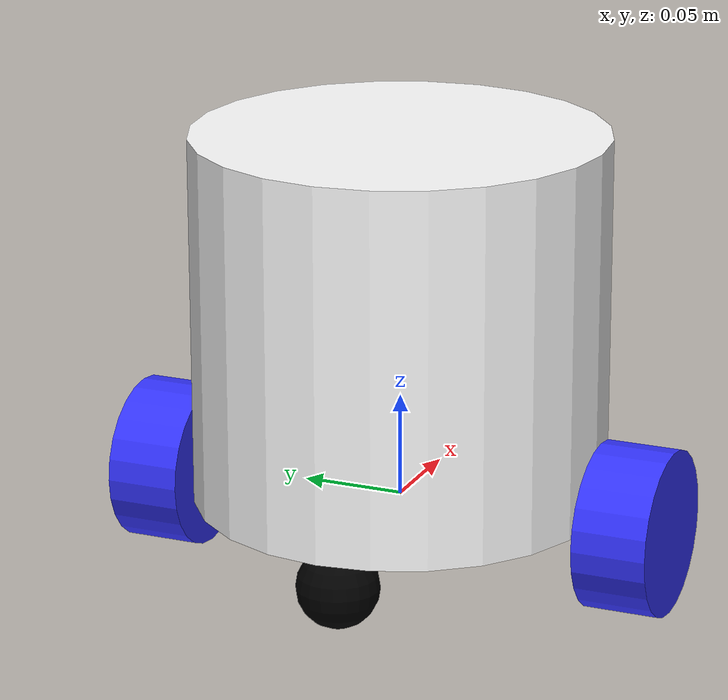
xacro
<?xml version="1.0"?>
<robot xmlns:xacro="http://www.ros.org/wiki/xacro">
    <xacro:include filename="inertial_macros.xacro" />

    <material name="white">
        <color rgba="1 1 1 1" />
    </material>

    <material name="orange">
        <color rgba="1 0.3 0.1 1" />
    </material>

    <material name="blue">
        <color rgba="0.2 0.2 1 1" />
    </material>

    <material name="black">
        <color rgba="0 0 0 1" />
    </material>

    <material name="red">
        <color rgba="1 0 0 1" />
    </material>

    <!-- BASE LINK -->
    <link name="base_link">
    </link>

    <!-- for SLAM -->
    <joint name="base_footprint_joint" type="fixed">
        <parent link="base_link" />
        <child link="base_footprint" />
        <origin xyz="0 0 0" rpy="0 0 0" />
    </joint>

    <!-- for SLAM -->
    <link name="base_footprint">
    </link>

    <!-- CHASSIS LINK -->
    <joint name="chassis_joint" type="fixed">
        <parent link="base_link" />
        <child link="chassis" />
        <origin xyz="0 0 0" rpy="0 0 0" />
    </joint>

    <link name="chassis">
        <visual>
            <origin xyz="0 0 0.09" />
            <geometry>
                <cylinder radius="0.1" length="0.18" />
            </geometry>
            <material name="white" />
        </visual>

        <collision>
            <origin xyz="0 0 0.11" />
            <geometry>
                <cylinder radius="0.1" length="0.18" />
            </geometry>
        </collision>

        <xacro:inertial_cylinder mass="0.5" radius="0.1" length="0.18">
            <origin xyz="0 0 0.11" rpy="0 0 0" />
        </xacro:inertial_cylinder>
    </link>

    <gazebo reference="chassis">
        <material>Gazebo/White</material>
    </gazebo>

    <!-- LEFT WHEEL LINK -->

    <joint name="left_wheel_joint" type="continuous">
        <parent link="base_link" />
        <child link="left_wheel" />
        <origin xyz="0 0.12 0" rpy="-${pi/2} 0 0" />
        <axis xyz="0 0 1" />
    </joint>

    <link name="left_wheel">
        <visual>
            <geometry>
                <cylinder radius="0.04" length="0.036" />
            </geometry>
            <material name="blue" />
        </visual>

        <collision>
            <geometry>
                <sphere radius="0.04" />
            </geometry>
        </collision>

        <xacro:inertial_cylinder mass="0.1" radius="0.04" length="0.036">
            <origin xyz="0 0 0" rpy="0 0 0" />
        </xacro:inertial_cylinder>
    </link>

    <gazebo reference="left_wheel">
        <material>Gazebo/Blue</material>
    </gazebo>

    <!-- RIGHT WHEEL LINK -->

    <joint name="right_wheel_joint" type="continuous">
        <parent link="base_link" />
        <child link="right_wheel" />
        <origin xyz="0 -0.12 0" rpy="${pi/2} 0 0" />
        <axis xyz="0 0 -1" />
    </joint>

    <link name="right_wheel">
        <visual>
            <geometry>
                <cylinder radius="0.04" length="0.036" />
            </geometry>
            <material name="blue" />
        </visual>

        <collision>
            <geometry>
                <sphere radius="0.04" />
            </geometry>
        </collision>

        <xacro:inertial_cylinder mass="0.1" radius="0.04" length="0.036">
            <origin xyz="0 0 0" rpy="0 0 0" />
        </xacro:inertial_cylinder>
    </link>

    <gazebo reference="right_wheel">
        <material>Gazebo/Blue</material>
    </gazebo>

    <!-- FRONT CASTER WHEEL LINK -->

    <joint name="front_caster_wheel_joint" type="fixed">
        <parent link="chassis" />
        <child link="front_caster_wheel" />
        <origin xyz="0.075 0 -0.02" />
    </joint>

    <link name="front_caster_wheel">
        <visual>
            <origin xyz="0 0 0" />
            <geometry>
                <sphere radius="0.02" />
            </geometry>
            <material name="black" />
        </visual>

        <collision>
            <origin xyz="0 0 0" />
            <geometry>
                <sphere radius="0.02" />
            </geometry>
        </collision>

        <xacro:inertial_sphere mass="0.1" radius="0.02">
            <origin xyz="0 0 0" rpy="0 0 0" />
        </xacro:inertial_sphere>
    </link>

    <gazebo reference="front_caster_wheel">
        <material>Gazebo/Black</material>
        <mu1 value="0.0001" />
        <mu2 value="0.0001" />
    </gazebo>

    <joint name="back_caster_wheel_joint" type="fixed">
        <parent link="chassis" />
        <child link="back_caster_wheel" />
        <origin xyz="-0.075 0 -0.02" />
    </joint>

    <!-- BACK CASTER WHEEL -->

    <link name="back_caster_wheel">
        <visual>
            <origin xyz="0 0 0" />
            <geometry>
                <sphere radius="0.02" />
            </geometry>
            <material name="black" />
        </visual>

        <collision>
            <origin xyz="0 0 0" />
            <geometry>
                <sphere radius="0.02" />
            </geometry>
        </collision>

        <xacro:inertial_sphere mass="0.1" radius="0.02">
            <origin xyz="0 0 0" rpy="0 0 0" />
        </xacro:inertial_sphere>
    </link>

    <gazebo reference="back_caster_wheel">
        <material>Gazebo/Black</material>
        <mu1 value="0.0001" />
        <mu2 value="0.0001" />
    </gazebo>

</robot>

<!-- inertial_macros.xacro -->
<robot xmlns:xacro="http://www.ros.org/wiki/xacro">

    <!-- Specify some standard inertial calculations
    https://en.wikipedia.org/wiki/List_of_moments_of_inertia -->
    <!-- These make use of xacro's mathematical functionality -->

    <xacro:macro name="inertial_sphere"
        params="mass radius *origin">
        <inertial>
            <xacro:insert_block name="origin" />
            <mass value="${mass}" />
            <inertia ixx="${(2/5) * mass * (radius*radius)}" ixy="0.0" ixz="0.0"
                iyy="${(2/5) * mass * (radius*radius)}" iyz="0.0"
                izz="${(2/5) * mass * (radius*radius)}" />
        </inertial>
    </xacro:macro>

    <xacro:macro
        name="inertial_box" params="mass x y z *origin">
        <inertial>
            <xacro:insert_block name="origin" />
            <mass value="${mass}" />
            <inertia ixx="${(1/12) * mass * (y*y+z*z)}" ixy="0.0" ixz="0.0"
                iyy="${(1/12) * mass * (x*x+z*z)}" iyz="0.0"
                izz="${(1/12) * mass * (x*x+y*y)}" />
        </inertial>
    </xacro:macro>

    <xacro:macro
        name="inertial_cylinder" params="mass length radius *origin">
        <inertial>
            <xacro:insert_block name="origin" />
            <mass value="${mass}" />
            <inertia ixx="${(1/12) * mass * (3*radius*radius + length*length)}" ixy="0.0" ixz="0.0"
                iyy="${(1/12) * mass * (3*radius*radius + length*length)}" iyz="0.0"
                izz="${(1/2) * mass * (radius*radius)}" />
        </inertial>
    </xacro:macro>
</robot>
